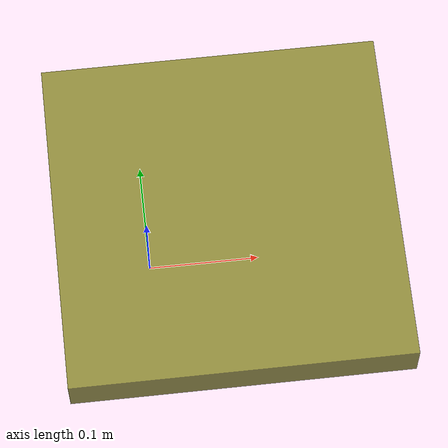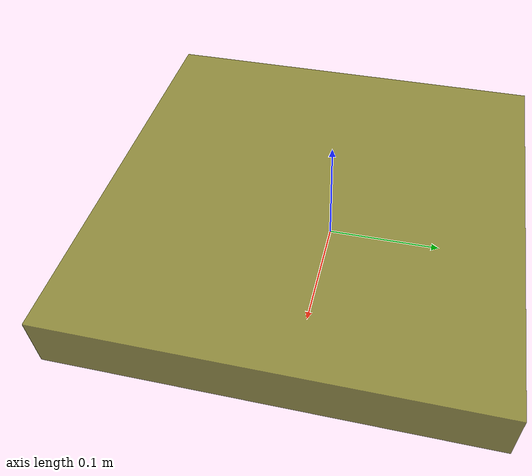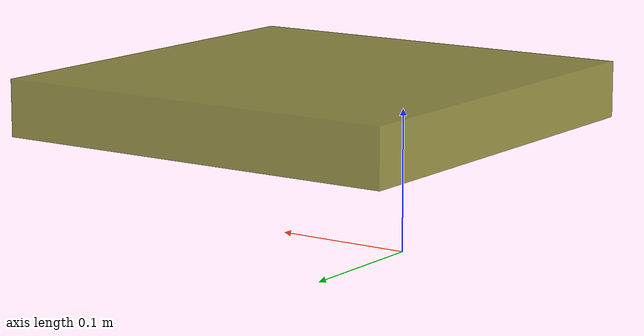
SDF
<?xml version="1.0"?>

<!--
  The cube has side length 7cm.
  The cube is connected to world with a planar joint.
  (https://github.com/pangtao22/quasistatic_simulator)
-->

<sdf version="1.7">
  <model name="hinge_box">

    <joint name="world_box_offset" type="fixed">
      <child>box_root</child>
      <parent>world</parent>
      <axis>
        <limit>
          <effort>0</effort>
        </limit>
      </axis>
    </joint>

    <link name="box_root">
        <pose relative_to="__model__">0.0 0.0 0.0 0.0 0 0</pose>
        <visual name="visual">
            <pose>0.07 0.0 0.1 0.0 0 0</pose>
            <geometry>
            <box>
                <size> 0.3 0.3 0.04 </size>
            </box>
            </geometry>
            <material>
            <diffuse>0.5 0.5 0.1 0.8</diffuse>
            </material>
        </visual>
    </link>

    <joint name="box_root_joint" type="revolute">
        <child>box_link</child>
        <parent>box_root</parent>
        <axis>
          <xyz>0 1 0</xyz>
          <limit>
            <effort>0</effort>
            <lower>-1.5708</lower>
            <upper>0.0</upper>
          </limit>
        </axis>
    </joint>

    <link name="box_link">
        <pose relative_to="box_root">0.20 0.0 0.1 0.0 0 0</pose>
        <collision name="collision">
            <pose>-0.13 0 0 0 0 0</pose>
            <geometry>
            <box>
                <size> 0.3 0.3 0.04 </size>
            </box>
            </geometry>
        </collision>
        <visual name="visual">
            <pose>-0.13 0 0 0 0 0</pose>
            <geometry>
            <box>
                <size> 0.3 0.3 0.04 </size>
            </box>
            </geometry>
            <material>
            <diffuse>0.1 0.5 0.5 0.8</diffuse>
            </material>
        </visual>
    </link>

  </model>
</sdf>
